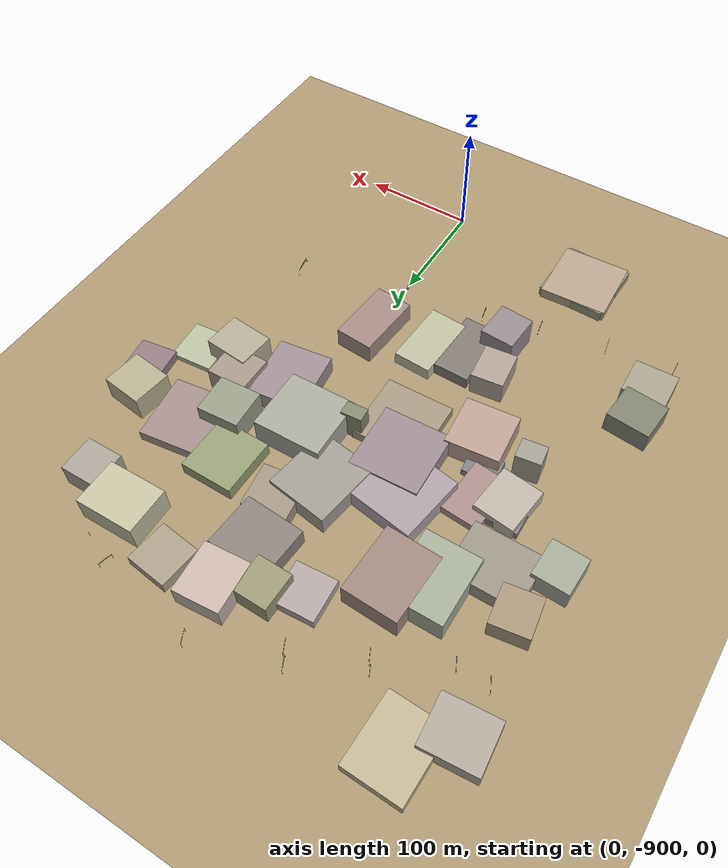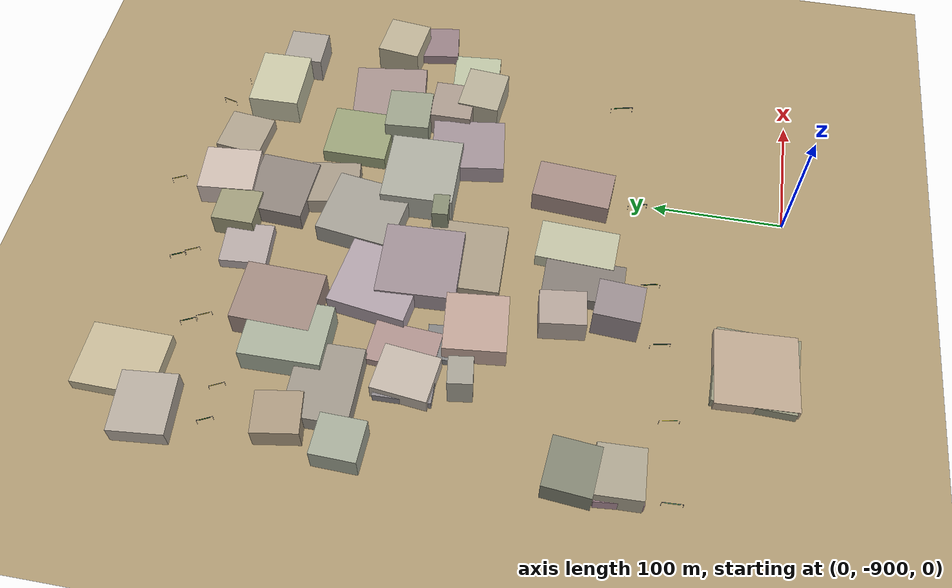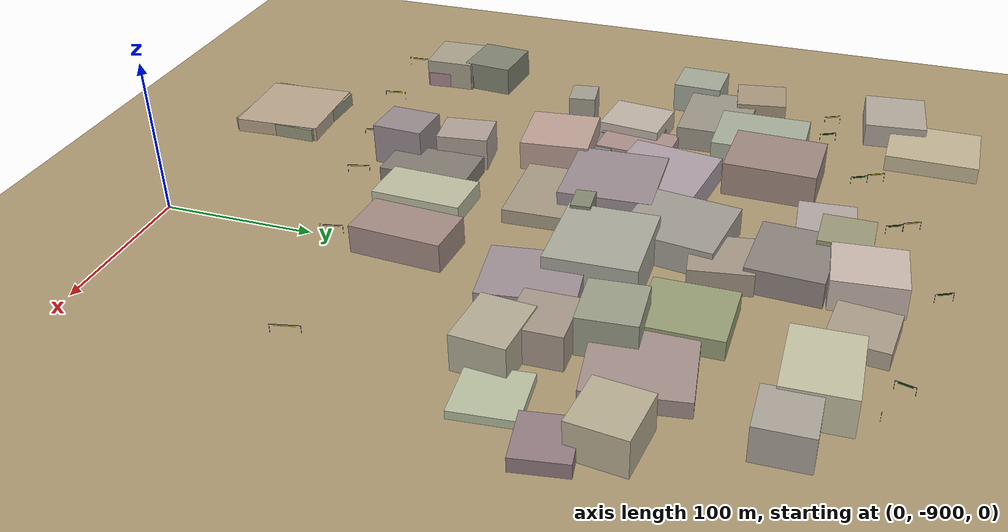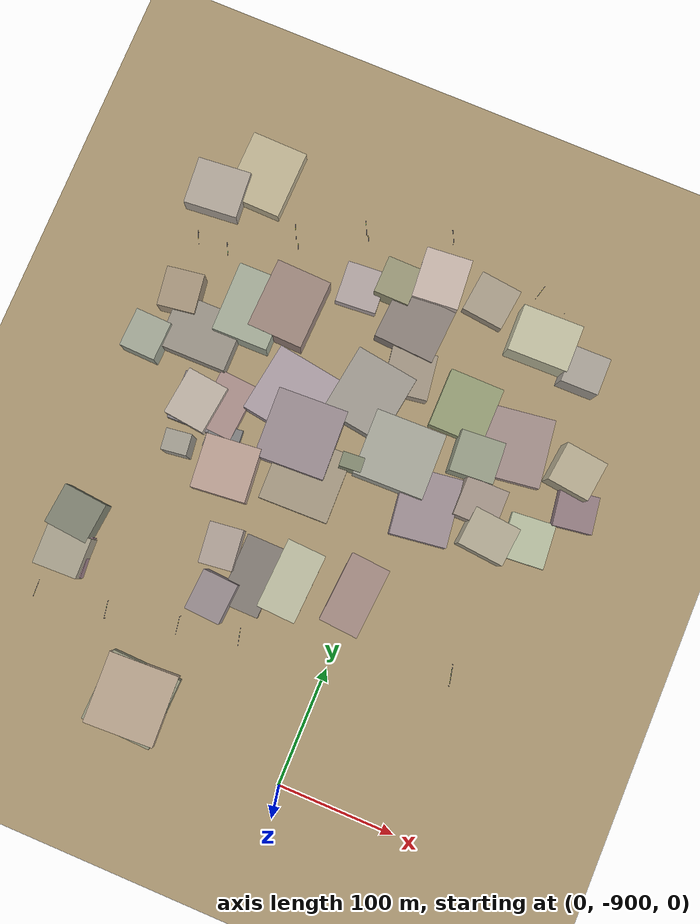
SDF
<sdf version="1.9">
 <world name="crossroad_world">
  <model name="ground_plane">
   <static>true</static>
   <pose>0 0 -0.05 0 0 0</pose>
   <link name="link">
    <collision name="collision">
     <geometry><plane><normal>0 0 1</normal><size>10000 10000</size></plane></geometry>
    </collision>
    <visual name="visual">
     <geometry><plane><normal>0 0 1</normal><size>15000 15000</size></plane></geometry>
     <material><ambient>0.68 0.60 0.45 1</ambient><diffuse>0.68 0.60 0.45 1</diffuse></material>
    </visual>
   </link>
  </model>
  <model name="tl_2">
   <static>true</static>
   <pose>70.780 -450.275 0 0 0 2.885</pose>
   <link name="link">
    <visual name="pole">
     <pose>0 0 2.750 0 0 0</pose>
     <geometry><cylinder><radius>0.06</radius><length>5.50</length></cylinder></geometry>
     <material><ambient>0.25 0.25 0.25 1</ambient><diffuse>0.25 0.25 0.25 1</diffuse></material>
    </visual>
    <visual name="housing">
     <pose>0 0 5.950 0 0 0</pose>
     <geometry><box><size>0.33 0.33 0.9</size></box></geometry>
     <material><ambient>0.08 0.08 0.08 1</ambient><diffuse>0.08 0.08 0.08 1</diffuse></material>
    </visual>
    <visual name="red">
     <pose>0 0 6.250 0 0 0</pose>
     <geometry><sphere><radius>0.09</radius></sphere></geometry>
     <material>
      <ambient>0.90 0.05 0.05 1</ambient>
      <diffuse>0.90 0.05 0.05 1</diffuse>
      <emissive>0.6 0 0 1</emissive>
     </material>
    </visual>
    <visual name="amber">
     <pose>0 0 5.950 0 0 0</pose>
     <geometry><sphere><radius>0.09</radius></sphere></geometry>
     <material><ambient>0.90 0.55 0.00 1</ambient><diffuse>0.90 0.55 0.00 1</diffuse></material>
    </visual>
    <visual name="green">
     <pose>0 0 5.650 0 0 0</pose>
     <geometry><sphere><radius>0.09</radius></sphere></geometry>
     <material><ambient>0.00 0.78 0.00 1</ambient><diffuse>0.00 0.78 0.00 1</diffuse></material>
    </visual>
    <collision name="col">
     <pose>0 0 2.750 0 0 0</pose>
     <geometry><cylinder><radius>0.06</radius><length>5.50</length></cylinder></geometry>
    </collision>
   </link>
  </model>
  <model name="gantry_1">
   <static>true</static>
   <pose>45.629 -440.178 0 0 0 1.314</pose>
   <link name="link">
    <visual name="post_l">
     <pose>-5.700 0 2.925 0 0 0</pose>
     <geometry><cylinder><radius>0.1</radius><length>5.85</length></cylinder></geometry>
     <material><ambient>0.30 0.30 0.35 1</ambient><diffuse>0.30 0.30 0.35 1</diffuse></material>
    </visual>
    <visual name="post_r">
     <pose>5.700 0 2.925 0 0 0</pose>
     <geometry><cylinder><radius>0.1</radius><length>5.85</length></cylinder></geometry>
     <material><ambient>0.30 0.30 0.35 1</ambient><diffuse>0.30 0.30 0.35 1</diffuse></material>
    </visual>
    <visual name="beam">
     <pose>0 0 6.000 0 0 0</pose>
     <geometry><box><size>11.400 0.22 0.22</size></box></geometry>
     <material><ambient>0.30 0.30 0.35 1</ambient><diffuse>0.30 0.30 0.35 1</diffuse></material>
    </visual>
    <visual name="sign_border">
     <pose>0 -0.14 5.450 0 0 0</pose>
     <geometry><box><size>8.288 0.04 0.92</size></box></geometry>
     <material><ambient>0.90 0.85 0.10 1</ambient><diffuse>0.90 0.85 0.10 1</diffuse></material>
    </visual>
    <visual name="sign_panel">
     <pose>0 -0.15 5.450 0 0 0</pose>
     <geometry><box><size>8.208 0.05 0.86</size></box></geometry>
     <material><ambient>0.05 0.38 0.10 1</ambient><diffuse>0.05 0.38 0.10 1</diffuse></material>
    </visual>
    <collision name="col_post_l">
     <pose>-5.700 0 2.925 0 0 0</pose>
     <geometry><cylinder><radius>0.1</radius><length>5.85</length></cylinder></geometry>
    </collision>
    <collision name="col_post_r">
     <pose>5.700 0 2.925 0 0 0</pose>
     <geometry><cylinder><radius>0.1</radius><length>5.85</length></cylinder></geometry>
    </collision>
    <collision name="col_beam">
     <pose>0 0 6.000 0 0 0</pose>
     <geometry><box><size>11.400 0.22 0.22</size></box></geometry>
    </collision>
   </link>
  </model>
  <model name="gantry_47">
   <static>true</static>
   <pose>-111.786 -445.579 0 0 0 -1.121</pose>
   <link name="link">
    <visual name="post_l">
     <pose>-5.700 0 2.925 0 0 0</pose>
     <geometry><cylinder><radius>0.1</radius><length>5.85</length></cylinder></geometry>
     <material><ambient>0.30 0.30 0.35 1</ambient><diffuse>0.30 0.30 0.35 1</diffuse></material>
    </visual>
    <visual name="post_r">
     <pose>5.700 0 2.925 0 0 0</pose>
     <geometry><cylinder><radius>0.1</radius><length>5.85</length></cylinder></geometry>
     <material><ambient>0.30 0.30 0.35 1</ambient><diffuse>0.30 0.30 0.35 1</diffuse></material>
    </visual>
    <visual name="beam">
     <pose>0 0 6.000 0 0 0</pose>
     <geometry><box><size>11.400 0.22 0.22</size></box></geometry>
     <material><ambient>0.30 0.30 0.35 1</ambient><diffuse>0.30 0.30 0.35 1</diffuse></material>
    </visual>
    <visual name="sign_border">
     <pose>0 -0.14 5.450 0 0 0</pose>
     <geometry><box><size>8.288 0.04 0.92</size></box></geometry>
     <material><ambient>0.90 0.85 0.10 1</ambient><diffuse>0.90 0.85 0.10 1</diffuse></material>
    </visual>
    <visual name="sign_panel">
     <pose>0 -0.15 5.450 0 0 0</pose>
     <geometry><box><size>8.208 0.05 0.86</size></box></geometry>
     <material><ambient>0.05 0.38 0.10 1</ambient><diffuse>0.05 0.38 0.10 1</diffuse></material>
    </visual>
    <collision name="col_post_l">
     <pose>-5.700 0 2.925 0 0 0</pose>
     <geometry><cylinder><radius>0.1</radius><length>5.85</length></cylinder></geometry>
    </collision>
    <collision name="col_post_r">
     <pose>5.700 0 2.925 0 0 0</pose>
     <geometry><cylinder><radius>0.1</radius><length>5.85</length></cylinder></geometry>
    </collision>
    <collision name="col_beam">
     <pose>0 0 6.000 0 0 0</pose>
     <geometry><box><size>11.400 0.22 0.22</size></box></geometry>
    </collision>
   </link>
  </model>
  <model name="gantry_48">
   <static>true</static>
   <pose>-165.815 -471.672 0 0 0 -1.121</pose>
   <link name="link">
    <visual name="post_l">
     <pose>-5.700 0 2.925 0 0 0</pose>
     <geometry><cylinder><radius>0.1</radius><length>5.85</length></cylinder></geometry>
     <material><ambient>0.30 0.30 0.35 1</ambient><diffuse>0.30 0.30 0.35 1</diffuse></material>
    </visual>
    <visual name="post_r">
     <pose>5.700 0 2.925 0 0 0</pose>
     <geometry><cylinder><radius>0.1</radius><length>5.85</length></cylinder></geometry>
     <material><ambient>0.30 0.30 0.35 1</ambient><diffuse>0.30 0.30 0.35 1</diffuse></material>
    </visual>
    <visual name="beam">
     <pose>0 0 6.000 0 0 0</pose>
     <geometry><box><size>11.400 0.22 0.22</size></box></geometry>
     <material><ambient>0.30 0.30 0.35 1</ambient><diffuse>0.30 0.30 0.35 1</diffuse></material>
    </visual>
    <visual name="sign_border">
     <pose>0 -0.14 5.450 0 0 0</pose>
     <geometry><box><size>8.288 0.04 0.92</size></box></geometry>
     <material><ambient>0.90 0.85 0.10 1</ambient><diffuse>0.90 0.85 0.10 1</diffuse></material>
    </visual>
    <visual name="sign_panel">
     <pose>0 -0.15 5.450 0 0 0</pose>
     <geometry><box><size>8.208 0.05 0.86</size></box></geometry>
     <material><ambient>0.05 0.38 0.10 1</ambient><diffuse>0.05 0.38 0.10 1</diffuse></material>
    </visual>
    <collision name="col_post_l">
     <pose>-5.700 0 2.925 0 0 0</pose>
     <geometry><cylinder><radius>0.1</radius><length>5.85</length></cylinder></geometry>
    </collision>
    <collision name="col_post_r">
     <pose>5.700 0 2.925 0 0 0</pose>
     <geometry><cylinder><radius>0.1</radius><length>5.85</length></cylinder></geometry>
    </collision>
    <collision name="col_beam">
     <pose>0 0 6.000 0 0 0</pose>
     <geometry><box><size>11.400 0.22 0.22</size></box></geometry>
    </collision>
   </link>
  </model>
  <model name="gantry_52">
   <static>true</static>
   <pose>-240.143 -508.150 0 0 0 -1.119</pose>
   <link name="link">
    <visual name="post_l">
     <pose>-5.700 0 2.925 0 0 0</pose>
     <geometry><cylinder><radius>0.1</radius><length>5.85</length></cylinder></geometry>
     <material><ambient>0.30 0.30 0.35 1</ambient><diffuse>0.30 0.30 0.35 1</diffuse></material>
    </visual>
    <visual name="post_r">
     <pose>5.700 0 2.925 0 0 0</pose>
     <geometry><cylinder><radius>0.1</radius><length>5.85</length></cylinder></geometry>
     <material><ambient>0.30 0.30 0.35 1</ambient><diffuse>0.30 0.30 0.35 1</diffuse></material>
    </visual>
    <visual name="beam">
     <pose>0 0 6.000 0 0 0</pose>
     <geometry><box><size>11.400 0.22 0.22</size></box></geometry>
     <material><ambient>0.30 0.30 0.35 1</ambient><diffuse>0.30 0.30 0.35 1</diffuse></material>
    </visual>
    <visual name="sign_border">
     <pose>0 -0.14 5.450 0 0 0</pose>
     <geometry><box><size>8.288 0.04 0.92</size></box></geometry>
     <material><ambient>0.90 0.85 0.10 1</ambient><diffuse>0.90 0.85 0.10 1</diffuse></material>
    </visual>
    <visual name="sign_panel">
     <pose>0 -0.15 5.450 0 0 0</pose>
     <geometry><box><size>8.208 0.05 0.86</size></box></geometry>
     <material><ambient>0.05 0.38 0.10 1</ambient><diffuse>0.05 0.38 0.10 1</diffuse></material>
    </visual>
    <collision name="col_post_l">
     <pose>-5.700 0 2.925 0 0 0</pose>
     <geometry><cylinder><radius>0.1</radius><length>5.85</length></cylinder></geometry>
    </collision>
    <collision name="col_post_r">
     <pose>5.700 0 2.925 0 0 0</pose>
     <geometry><cylinder><radius>0.1</radius><length>5.85</length></cylinder></geometry>
    </collision>
    <collision name="col_beam">
     <pose>0 0 6.000 0 0 0</pose>
     <geometry><box><size>11.400 0.22 0.22</size></box></geometry>
    </collision>
   </link>
  </model>
  <model name="gantry_61">
   <static>true</static>
   <pose>-159.361 -481.997 0 0 0 2.027</pose>
   <link name="link">
    <visual name="post_l">
     <pose>-5.700 0 2.925 0 0 0</pose>
     <geometry><cylinder><radius>0.1</radius><length>5.85</length></cylinder></geometry>
     <material><ambient>0.30 0.30 0.35 1</ambient><diffuse>0.30 0.30 0.35 1</diffuse></material>
    </visual>
    <visual name="post_r">
     <pose>5.700 0 2.925 0 0 0</pose>
     <geometry><cylinder><radius>0.1</radius><length>5.85</length></cylinder></geometry>
     <material><ambient>0.30 0.30 0.35 1</ambient><diffuse>0.30 0.30 0.35 1</diffuse></material>
    </visual>
    <visual name="beam">
     <pose>0 0 6.000 0 0 0</pose>
     <geometry><box><size>11.400 0.22 0.22</size></box></geometry>
     <material><ambient>0.30 0.30 0.35 1</ambient><diffuse>0.30 0.30 0.35 1</diffuse></material>
    </visual>
    <visual name="sign_border">
     <pose>0 -0.14 5.450 0 0 0</pose>
     <geometry><box><size>8.288 0.04 0.92</size></box></geometry>
     <material><ambient>0.90 0.85 0.10 1</ambient><diffuse>0.90 0.85 0.10 1</diffuse></material>
    </visual>
    <visual name="sign_panel">
     <pose>0 -0.15 5.450 0 0 0</pose>
     <geometry><box><size>8.208 0.05 0.86</size></box></geometry>
     <material><ambient>0.05 0.38 0.10 1</ambient><diffuse>0.05 0.38 0.10 1</diffuse></material>
    </visual>
    <collision name="col_post_l">
     <pose>-5.700 0 2.925 0 0 0</pose>
     <geometry><cylinder><radius>0.1</radius><length>5.85</length></cylinder></geometry>
    </collision>
    <collision name="col_post_r">
     <pose>5.700 0 2.925 0 0 0</pose>
     <geometry><cylinder><radius>0.1</radius><length>5.85</length></cylinder></geometry>
    </collision>
    <collision name="col_beam">
     <pose>0 0 6.000 0 0 0</pose>
     <geometry><box><size>11.400 0.22 0.22</size></box></geometry>
    </collision>
   </link>
  </model>
  <model name="gantry_62">
   <static>true</static>
   <pose>-105.487 -455.585 0 0 0 2.027</pose>
   <link name="link">
    <visual name="post_l">
     <pose>-5.700 0 2.925 0 0 0</pose>
     <geometry><cylinder><radius>0.1</radius><length>5.85</length></cylinder></geometry>
     <material><ambient>0.30 0.30 0.35 1</ambient><diffuse>0.30 0.30 0.35 1</diffuse></material>
    </visual>
    <visual name="post_r">
     <pose>5.700 0 2.925 0 0 0</pose>
     <geometry><cylinder><radius>0.1</radius><length>5.85</length></cylinder></geometry>
     <material><ambient>0.30 0.30 0.35 1</ambient><diffuse>0.30 0.30 0.35 1</diffuse></material>
    </visual>
    <visual name="beam">
     <pose>0 0 6.000 0 0 0</pose>
     <geometry><box><size>11.400 0.22 0.22</size></box></geometry>
     <material><ambient>0.30 0.30 0.35 1</ambient><diffuse>0.30 0.30 0.35 1</diffuse></material>
    </visual>
    <visual name="sign_border">
     <pose>0 -0.14 5.450 0 0 0</pose>
     <geometry><box><size>8.288 0.04 0.92</size></box></geometry>
     <material><ambient>0.90 0.85 0.10 1</ambient><diffuse>0.90 0.85 0.10 1</diffuse></material>
    </visual>
    <visual name="sign_panel">
     <pose>0 -0.15 5.450 0 0 0</pose>
     <geometry><box><size>8.208 0.05 0.86</size></box></geometry>
     <material><ambient>0.05 0.38 0.10 1</ambient><diffuse>0.05 0.38 0.10 1</diffuse></material>
    </visual>
    <collision name="col_post_l">
     <pose>-5.700 0 2.925 0 0 0</pose>
     <geometry><cylinder><radius>0.1</radius><length>5.85</length></cylinder></geometry>
    </collision>
    <collision name="col_post_r">
     <pose>5.700 0 2.925 0 0 0</pose>
     <geometry><cylinder><radius>0.1</radius><length>5.85</length></cylinder></geometry>
    </collision>
    <collision name="col_beam">
     <pose>0 0 6.000 0 0 0</pose>
     <geometry><box><size>11.400 0.22 0.22</size></box></geometry>
    </collision>
   </link>
  </model>
  <model name="gantry_63">
   <static>true</static>
   <pose>-213.235 -508.408 0 0 0 2.027</pose>
   <link name="link">
    <visual name="post_l">
     <pose>-5.700 0 2.925 0 0 0</pose>
     <geometry><cylinder><radius>0.1</radius><length>5.85</length></cylinder></geometry>
     <material><ambient>0.30 0.30 0.35 1</ambient><diffuse>0.30 0.30 0.35 1</diffuse></material>
    </visual>
    <visual name="post_r">
     <pose>5.700 0 2.925 0 0 0</pose>
     <geometry><cylinder><radius>0.1</radius><length>5.85</length></cylinder></geometry>
     <material><ambient>0.30 0.30 0.35 1</ambient><diffuse>0.30 0.30 0.35 1</diffuse></material>
    </visual>
    <visual name="beam">
     <pose>0 0 6.000 0 0 0</pose>
     <geometry><box><size>11.400 0.22 0.22</size></box></geometry>
     <material><ambient>0.30 0.30 0.35 1</ambient><diffuse>0.30 0.30 0.35 1</diffuse></material>
    </visual>
    <visual name="sign_border">
     <pose>0 -0.14 5.450 0 0 0</pose>
     <geometry><box><size>8.288 0.04 0.92</size></box></geometry>
     <material><ambient>0.90 0.85 0.10 1</ambient><diffuse>0.90 0.85 0.10 1</diffuse></material>
    </visual>
    <visual name="sign_panel">
     <pose>0 -0.15 5.450 0 0 0</pose>
     <geometry><box><size>8.208 0.05 0.86</size></box></geometry>
     <material><ambient>0.05 0.38 0.10 1</ambient><diffuse>0.05 0.38 0.10 1</diffuse></material>
    </visual>
    <collision name="col_post_l">
     <pose>-5.700 0 2.925 0 0 0</pose>
     <geometry><cylinder><radius>0.1</radius><length>5.85</length></cylinder></geometry>
    </collision>
    <collision name="col_post_r">
     <pose>5.700 0 2.925 0 0 0</pose>
     <geometry><cylinder><radius>0.1</radius><length>5.85</length></cylinder></geometry>
    </collision>
    <collision name="col_beam">
     <pose>0 0 6.000 0 0 0</pose>
     <geometry><box><size>11.400 0.22 0.22</size></box></geometry>
    </collision>
   </link>
  </model>
  <model name="gantry_64">
   <static>true</static>
   <pose>-40.800 -423.876 0 0 0 2.026</pose>
   <link name="link">
    <visual name="post_l">
     <pose>-5.700 0 2.925 0 0 0</pose>
     <geometry><cylinder><radius>0.1</radius><length>5.85</length></cylinder></geometry>
     <material><ambient>0.30 0.30 0.35 1</ambient><diffuse>0.30 0.30 0.35 1</diffuse></material>
    </visual>
    <visual name="post_r">
     <pose>5.700 0 2.925 0 0 0</pose>
     <geometry><cylinder><radius>0.1</radius><length>5.85</length></cylinder></geometry>
     <material><ambient>0.30 0.30 0.35 1</ambient><diffuse>0.30 0.30 0.35 1</diffuse></material>
    </visual>
    <visual name="beam">
     <pose>0 0 6.000 0 0 0</pose>
     <geometry><box><size>11.400 0.22 0.22</size></box></geometry>
     <material><ambient>0.30 0.30 0.35 1</ambient><diffuse>0.30 0.30 0.35 1</diffuse></material>
    </visual>
    <visual name="sign_border">
     <pose>0 -0.14 5.450 0 0 0</pose>
     <geometry><box><size>8.288 0.04 0.92</size></box></geometry>
     <material><ambient>0.90 0.85 0.10 1</ambient><diffuse>0.90 0.85 0.10 1</diffuse></material>
    </visual>
    <visual name="sign_panel">
     <pose>0 -0.15 5.450 0 0 0</pose>
     <geometry><box><size>8.208 0.05 0.86</size></box></geometry>
     <material><ambient>0.05 0.38 0.10 1</ambient><diffuse>0.05 0.38 0.10 1</diffuse></material>
    </visual>
    <collision name="col_post_l">
     <pose>-5.700 0 2.925 0 0 0</pose>
     <geometry><cylinder><radius>0.1</radius><length>5.85</length></cylinder></geometry>
    </collision>
    <collision name="col_post_r">
     <pose>5.700 0 2.925 0 0 0</pose>
     <geometry><cylinder><radius>0.1</radius><length>5.85</length></cylinder></geometry>
    </collision>
    <collision name="col_beam">
     <pose>0 0 6.000 0 0 0</pose>
     <geometry><box><size>11.400 0.22 0.22</size></box></geometry>
    </collision>
   </link>
  </model>
  <model name="gantry_103">
   <static>true</static>
   <pose>-3.310 -786.940 0 0 0 -1.371</pose>
   <link name="link">
    <visual name="post_l">
     <pose>-7.300 0 2.925 0 0 0</pose>
     <geometry><cylinder><radius>0.1</radius><length>5.85</length></cylinder></geometry>
     <material><ambient>0.30 0.30 0.35 1</ambient><diffuse>0.30 0.30 0.35 1</diffuse></material>
    </visual>
    <visual name="post_r">
     <pose>7.300 0 2.925 0 0 0</pose>
     <geometry><cylinder><radius>0.1</radius><length>5.85</length></cylinder></geometry>
     <material><ambient>0.30 0.30 0.35 1</ambient><diffuse>0.30 0.30 0.35 1</diffuse></material>
    </visual>
    <visual name="beam">
     <pose>0 0 6.000 0 0 0</pose>
     <geometry><box><size>14.600 0.22 0.22</size></box></geometry>
     <material><ambient>0.30 0.30 0.35 1</ambient><diffuse>0.30 0.30 0.35 1</diffuse></material>
    </visual>
    <visual name="sign_border">
     <pose>0 -0.14 5.450 0 0 0</pose>
     <geometry><box><size>10.592 0.04 0.92</size></box></geometry>
     <material><ambient>0.90 0.85 0.10 1</ambient><diffuse>0.90 0.85 0.10 1</diffuse></material>
    </visual>
    <visual name="sign_panel">
     <pose>0 -0.15 5.450 0 0 0</pose>
     <geometry><box><size>10.512 0.05 0.86</size></box></geometry>
     <material><ambient>0.05 0.38 0.10 1</ambient><diffuse>0.05 0.38 0.10 1</diffuse></material>
    </visual>
    <collision name="col_post_l">
     <pose>-7.300 0 2.925 0 0 0</pose>
     <geometry><cylinder><radius>0.1</radius><length>5.85</length></cylinder></geometry>
    </collision>
    <collision name="col_post_r">
     <pose>7.300 0 2.925 0 0 0</pose>
     <geometry><cylinder><radius>0.1</radius><length>5.85</length></cylinder></geometry>
    </collision>
    <collision name="col_beam">
     <pose>0 0 6.000 0 0 0</pose>
     <geometry><box><size>14.600 0.22 0.22</size></box></geometry>
    </collision>
   </link>
  </model>
  <model name="gantry_104">
   <static>true</static>
   <pose>94.974 -765.272 0 0 0 -1.362</pose>
   <link name="link">
    <visual name="post_l">
     <pose>-8.900 0 2.925 0 0 0</pose>
     <geometry><cylinder><radius>0.1</radius><length>5.85</length></cylinder></geometry>
     <material><ambient>0.30 0.30 0.35 1</ambient><diffuse>0.30 0.30 0.35 1</diffuse></material>
    </visual>
    <visual name="post_r">
     <pose>8.900 0 2.925 0 0 0</pose>
     <geometry><cylinder><radius>0.1</radius><length>5.85</length></cylinder></geometry>
     <material><ambient>0.30 0.30 0.35 1</ambient><diffuse>0.30 0.30 0.35 1</diffuse></material>
    </visual>
    <visual name="beam">
     <pose>0 0 6.000 0 0 0</pose>
     <geometry><box><size>17.800 0.22 0.22</size></box></geometry>
     <material><ambient>0.30 0.30 0.35 1</ambient><diffuse>0.30 0.30 0.35 1</diffuse></material>
    </visual>
    <visual name="sign_border">
     <pose>0 -0.14 5.450 0 0 0</pose>
     <geometry><box><size>12.896 0.04 0.92</size></box></geometry>
     <material><ambient>0.90 0.85 0.10 1</ambient><diffuse>0.90 0.85 0.10 1</diffuse></material>
    </visual>
    <visual name="sign_panel">
     <pose>0 -0.15 5.450 0 0 0</pose>
     <geometry><box><size>12.816 0.05 0.86</size></box></geometry>
     <material><ambient>0.05 0.38 0.10 1</ambient><diffuse>0.05 0.38 0.10 1</diffuse></material>
    </visual>
    <collision name="col_post_l">
     <pose>-8.900 0 2.925 0 0 0</pose>
     <geometry><cylinder><radius>0.1</radius><length>5.85</length></cylinder></geometry>
    </collision>
    <collision name="col_post_r">
     <pose>8.900 0 2.925 0 0 0</pose>
     <geometry><cylinder><radius>0.1</radius><length>5.85</length></cylinder></geometry>
    </collision>
    <collision name="col_beam">
     <pose>0 0 6.000 0 0 0</pose>
     <geometry><box><size>17.800 0.22 0.22</size></box></geometry>
    </collision>
   </link>
  </model>
  <model name="gantry_105">
   <static>true</static>
   <pose>-244.082 -831.112 0 0 0 -1.521</pose>
   <link name="link">
    <visual name="post_l">
     <pose>-7.300 0 2.925 0 0 0</pose>
     <geometry><cylinder><radius>0.1</radius><length>5.85</length></cylinder></geometry>
     <material><ambient>0.30 0.30 0.35 1</ambient><diffuse>0.30 0.30 0.35 1</diffuse></material>
    </visual>
    <visual name="post_r">
     <pose>7.300 0 2.925 0 0 0</pose>
     <geometry><cylinder><radius>0.1</radius><length>5.85</length></cylinder></geometry>
     <material><ambient>0.30 0.30 0.35 1</ambient><diffuse>0.30 0.30 0.35 1</diffuse></material>
    </visual>
    <visual name="beam">
     <pose>0 0 6.000 0 0 0</pose>
     <geometry><box><size>14.600 0.22 0.22</size></box></geometry>
     <material><ambient>0.30 0.30 0.35 1</ambient><diffuse>0.30 0.30 0.35 1</diffuse></material>
    </visual>
    <visual name="sign_border">
     <pose>0 -0.14 5.450 0 0 0</pose>
     <geometry><box><size>10.592 0.04 0.92</size></box></geometry>
     <material><ambient>0.90 0.85 0.10 1</ambient><diffuse>0.90 0.85 0.10 1</diffuse></material>
    </visual>
    <visual name="sign_panel">
     <pose>0 -0.15 5.450 0 0 0</pose>
     <geometry><box><size>10.512 0.05 0.86</size></box></geometry>
     <material><ambient>0.05 0.38 0.10 1</ambient><diffuse>0.05 0.38 0.10 1</diffuse></material>
    </visual>
    <collision name="col_post_l">
     <pose>-7.300 0 2.925 0 0 0</pose>
     <geometry><cylinder><radius>0.1</radius><length>5.85</length></cylinder></geometry>
    </collision>
    <collision name="col_post_r">
     <pose>7.300 0 2.925 0 0 0</pose>
     <geometry><cylinder><radius>0.1</radius><length>5.85</length></cylinder></geometry>
    </collision>
    <collision name="col_beam">
     <pose>0 0 6.000 0 0 0</pose>
     <geometry><box><size>14.600 0.22 0.22</size></box></geometry>
    </collision>
   </link>
  </model>
  <model name="gantry_108">
   <static>true</static>
   <pose>-184.480 -824.884 0 0 0 -1.387</pose>
   <link name="link">
    <visual name="post_l">
     <pose>-7.300 0 2.925 0 0 0</pose>
     <geometry><cylinder><radius>0.1</radius><length>5.85</length></cylinder></geometry>
     <material><ambient>0.30 0.30 0.35 1</ambient><diffuse>0.30 0.30 0.35 1</diffuse></material>
    </visual>
    <visual name="post_r">
     <pose>7.300 0 2.925 0 0 0</pose>
     <geometry><cylinder><radius>0.1</radius><length>5.85</length></cylinder></geometry>
     <material><ambient>0.30 0.30 0.35 1</ambient><diffuse>0.30 0.30 0.35 1</diffuse></material>
    </visual>
    <visual name="beam">
     <pose>0 0 6.000 0 0 0</pose>
     <geometry><box><size>14.600 0.22 0.22</size></box></geometry>
     <material><ambient>0.30 0.30 0.35 1</ambient><diffuse>0.30 0.30 0.35 1</diffuse></material>
    </visual>
    <visual name="sign_border">
     <pose>0 -0.14 5.450 0 0 0</pose>
     <geometry><box><size>10.592 0.04 0.92</size></box></geometry>
     <material><ambient>0.90 0.85 0.10 1</ambient><diffuse>0.90 0.85 0.10 1</diffuse></material>
    </visual>
    <visual name="sign_panel">
     <pose>0 -0.15 5.450 0 0 0</pose>
     <geometry><box><size>10.512 0.05 0.86</size></box></geometry>
     <material><ambient>0.05 0.38 0.10 1</ambient><diffuse>0.05 0.38 0.10 1</diffuse></material>
    </visual>
    <collision name="col_post_l">
     <pose>-7.300 0 2.925 0 0 0</pose>
     <geometry><cylinder><radius>0.1</radius><length>5.85</length></cylinder></geometry>
    </collision>
    <collision name="col_post_r">
     <pose>7.300 0 2.925 0 0 0</pose>
     <geometry><cylinder><radius>0.1</radius><length>5.85</length></cylinder></geometry>
    </collision>
    <collision name="col_beam">
     <pose>0 0 6.000 0 0 0</pose>
     <geometry><box><size>14.600 0.22 0.22</size></box></geometry>
    </collision>
   </link>
  </model>
  <model name="gantry_109">
   <static>true</static>
   <pose>-125.471 -814.025 0 0 0 -1.389</pose>
   <link name="link">
    <visual name="post_l">
     <pose>-7.300 0 2.925 0 0 0</pose>
     <geometry><cylinder><radius>0.1</radius><length>5.85</length></cylinder></geometry>
     <material><ambient>0.30 0.30 0.35 1</ambient><diffuse>0.30 0.30 0.35 1</diffuse></material>
    </visual>
    <visual name="post_r">
     <pose>7.300 0 2.925 0 0 0</pose>
     <geometry><cylinder><radius>0.1</radius><length>5.85</length></cylinder></geometry>
     <material><ambient>0.30 0.30 0.35 1</ambient><diffuse>0.30 0.30 0.35 1</diffuse></material>
    </visual>
    <visual name="beam">
     <pose>0 0 6.000 0 0 0</pose>
     <geometry><box><size>14.600 0.22 0.22</size></box></geometry>
     <material><ambient>0.30 0.30 0.35 1</ambient><diffuse>0.30 0.30 0.35 1</diffuse></material>
    </visual>
    <visual name="sign_border">
     <pose>0 -0.14 5.450 0 0 0</pose>
     <geometry><box><size>10.592 0.04 0.92</size></box></geometry>
     <material><ambient>0.90 0.85 0.10 1</ambient><diffuse>0.90 0.85 0.10 1</diffuse></material>
    </visual>
    <visual name="sign_panel">
     <pose>0 -0.15 5.450 0 0 0</pose>
     <geometry><box><size>10.512 0.05 0.86</size></box></geometry>
     <material><ambient>0.05 0.38 0.10 1</ambient><diffuse>0.05 0.38 0.10 1</diffuse></material>
    </visual>
    <collision name="col_post_l">
     <pose>-7.300 0 2.925 0 0 0</pose>
     <geometry><cylinder><radius>0.1</radius><length>5.85</length></cylinder></geometry>
    </collision>
    <collision name="col_post_r">
     <pose>7.300 0 2.925 0 0 0</pose>
     <geometry><cylinder><radius>0.1</radius><length>5.85</length></cylinder></geometry>
    </collision>
    <collision name="col_beam">
     <pose>0 0 6.000 0 0 0</pose>
     <geometry><box><size>14.600 0.22 0.22</size></box></geometry>
    </collision>
   </link>
  </model>
  <model name="gantry_141">
   <static>true</static>
   <pose>-75.600 -802.985 0 0 0 -1.321</pose>
   <link name="link">
    <visual name="post_l">
     <pose>-7.300 0 2.925 0 0 0</pose>
     <geometry><cylinder><radius>0.1</radius><length>5.85</length></cylinder></geometry>
     <material><ambient>0.30 0.30 0.35 1</ambient><diffuse>0.30 0.30 0.35 1</diffuse></material>
    </visual>
    <visual name="post_r">
     <pose>7.300 0 2.925 0 0 0</pose>
     <geometry><cylinder><radius>0.1</radius><length>5.85</length></cylinder></geometry>
     <material><ambient>0.30 0.30 0.35 1</ambient><diffuse>0.30 0.30 0.35 1</diffuse></material>
    </visual>
    <visual name="beam">
     <pose>0 0 6.000 0 0 0</pose>
     <geometry><box><size>14.600 0.22 0.22</size></box></geometry>
     <material><ambient>0.30 0.30 0.35 1</ambient><diffuse>0.30 0.30 0.35 1</diffuse></material>
    </visual>
    <visual name="sign_border">
     <pose>0 -0.14 5.450 0 0 0</pose>
     <geometry><box><size>10.592 0.04 0.92</size></box></geometry>
     <material><ambient>0.90 0.85 0.10 1</ambient><diffuse>0.90 0.85 0.10 1</diffuse></material>
    </visual>
    <visual name="sign_panel">
     <pose>0 -0.15 5.450 0 0 0</pose>
     <geometry><box><size>10.512 0.05 0.86</size></box></geometry>
     <material><ambient>0.05 0.38 0.10 1</ambient><diffuse>0.05 0.38 0.10 1</diffuse></material>
    </visual>
    <collision name="col_post_l">
     <pose>-7.300 0 2.925 0 0 0</pose>
     <geometry><cylinder><radius>0.1</radius><length>5.85</length></cylinder></geometry>
    </collision>
    <collision name="col_post_r">
     <pose>7.300 0 2.925 0 0 0</pose>
     <geometry><cylinder><radius>0.1</radius><length>5.85</length></cylinder></geometry>
    </collision>
    <collision name="col_beam">
     <pose>0 0 6.000 0 0 0</pose>
     <geometry><box><size>14.600 0.22 0.22</size></box></geometry>
    </collision>
   </link>
  </model>
  <model name="building_201">
   <static>true</static>
   <pose>101.884 -493.287 11.136 0 0 0.012</pose>
   <link name="link">
    <visual name="body">
     <geometry><box><size>32.32 31.84 22.27</size></box></geometry>
     <material><ambient>0.68 0.65 0.61 1</ambient><diffuse>0.68 0.65 0.61 1</diffuse></material>
    </visual>
    <collision name="col"><geometry><box><size>32.32 31.84 22.27</size></box></geometry></collision>
   </link>
  </model>
  <model name="building_204">
   <static>true</static>
   <pose>139.528 -602.338 4.535 0 0 0.146</pose>
   <link name="link">
    <visual name="body">
     <geometry><box><size>33.29 31.54 9.07</size></box></geometry>
     <material><ambient>0.59 0.50 0.52 1</ambient><diffuse>0.59 0.50 0.52 1</diffuse></material>
    </visual>
    <collision name="col"><geometry><box><size>33.29 31.54 9.07</size></box></geometry></collision>
   </link>
  </model>
  <model name="building_205">
   <static>true</static>
   <pose>112.433 -639.487 2.640 0 0 0.084</pose>
   <link name="link">
    <visual name="body">
     <geometry><box><size>37.53 38.29 5.28</size></box></geometry>
     <material><ambient>0.73 0.76 0.64 1</ambient><diffuse>0.73 0.76 0.64 1</diffuse></material>
    </visual>
    <collision name="col"><geometry><box><size>37.53 38.29 5.28</size></box></geometry></collision>
   </link>
  </model>
  <model name="building_206">
   <static>true</static>
   <pose>23.897 -557.627 6.231 0 0 -0.004</pose>
   <link name="link">
    <visual name="body">
     <geometry><box><size>46.63 50.64 12.46</size></box></geometry>
     <material><ambient>0.60 0.63 0.47 1</ambient><diffuse>0.60 0.63 0.47 1</diffuse></material>
    </visual>
    <collision name="col"><geometry><box><size>46.63 50.64 12.46</size></box></geometry></collision>
   </link>
  </model>
  <model name="building_207">
   <static>true</static>
   <pose>79.060 -650.298 11.843 0 0 -0.092</pose>
   <link name="link">
    <visual name="body">
     <geometry><box><size>39.87 33.14 23.69</size></box></geometry>
     <material><ambient>0.71 0.68 0.59 1</ambient><diffuse>0.71 0.68 0.59 1</diffuse></material>
    </visual>
    <collision name="col"><geometry><box><size>39.87 33.14 23.69</size></box></geometry></collision>
   </link>
  </model>
  <model name="building_208">
   <static>true</static>
   <pose>46.355 -594.342 12.366 0 0 0.068</pose>
   <link name="link">
    <visual name="body">
     <geometry><box><size>37.23 35.25 24.73</size></box></geometry>
     <material><ambient>0.61 0.63 0.54 1</ambient><diffuse>0.61 0.63 0.54 1</diffuse></material>
    </visual>
    <collision name="col"><geometry><box><size>37.23 35.25 24.73</size></box></geometry></collision>
   </link>
  </model>
  <model name="building_209">
   <static>true</static>
   <pose>63.285 -627.808 11.294 0 0 0.007</pose>
   <link name="link">
    <visual name="body">
     <geometry><box><size>35.92 33.42 22.59</size></box></geometry>
     <material><ambient>0.66 0.60 0.55 1</ambient><diffuse>0.66 0.60 0.55 1</diffuse></material>
    </visual>
    <collision name="col"><geometry><box><size>35.92 33.42 22.59</size></box></geometry></collision>
   </link>
  </model>
  <model name="building_210">
   <static>true</static>
   <pose>24.017 -647.211 8.649 0 0 0.134</pose>
   <link name="link">
    <visual name="body">
     <geometry><box><size>47.81 57.51 17.30</size></box></geometry>
     <material><ambient>0.63 0.57 0.59 1</ambient><diffuse>0.63 0.57 0.59 1</diffuse></material>
    </visual>
    <collision name="col"><geometry><box><size>47.81 57.51 17.30</size></box></geometry></collision>
   </link>
  </model>
  <model name="building_211">
   <static>true</static>
   <pose>-138.716 -681.262 9.889 0 0 0.100</pose>
   <link name="link">
    <visual name="body">
     <geometry><box><size>46.60 46.11 19.78</size></box></geometry>
     <material><ambient>0.75 0.64 0.59 1</ambient><diffuse>0.75 0.64 0.59 1</diffuse></material>
    </visual>
    <collision name="col"><geometry><box><size>46.60 46.11 19.78</size></box></geometry></collision>
   </link>
  </model>
  <model name="building_212">
   <static>true</static>
   <pose>-152.475 -658.640 3.417 0 0 0.088</pose>
   <link name="link">
    <visual name="body">
     <geometry><box><size>28.57 21.65 6.83</size></box></geometry>
     <material><ambient>0.51 0.51 0.51 1</ambient><diffuse>0.51 0.51 0.51 1</diffuse></material>
    </visual>
    <collision name="col"><geometry><box><size>28.57 21.65 6.83</size></box></geometry></collision>
   </link>
  </model>
  <model name="building_213">
   <static>true</static>
   <pose>-35.508 -466.567 10.135 0 0 0.085</pose>
   <link name="link">
    <visual name="body">
     <geometry><box><size>39.69 43.89 20.27</size></box></geometry>
     <material><ambient>0.80 0.73 0.69 1</ambient><diffuse>0.80 0.73 0.69 1</diffuse></material>
    </visual>
    <collision name="col"><geometry><box><size>39.69 43.89 20.27</size></box></geometry></collision>
   </link>
  </model>
  <model name="building_214">
   <static>true</static>
   <pose>-68.317 -482.273 9.845 0 0 -0.009</pose>
   <link name="link">
    <visual name="body">
     <geometry><box><size>30.50 32.46 19.69</size></box></geometry>
     <material><ambient>0.62 0.61 0.48 1</ambient><diffuse>0.62 0.61 0.48 1</diffuse></material>
    </visual>
    <collision name="col"><geometry><box><size>30.50 32.46 19.69</size></box></geometry></collision>
   </link>
  </model>
  <model name="building_215">
   <static>true</static>
   <pose>-233.721 -794.099 10.017 0 0 0.033</pose>
   <link name="link">
    <visual name="body">
     <geometry><box><size>37.65 34.08 20.03</size></box></geometry>
     <material><ambient>0.67 0.64 0.56 1</ambient><diffuse>0.67 0.64 0.56 1</diffuse></material>
    </visual>
    <collision name="col"><geometry><box><size>37.65 34.08 20.03</size></box></geometry></collision>
   </link>
  </model>
  <model name="building_216">
   <static>true</static>
   <pose>-233.721 -794.099 5.275 0 0 0.092</pose>
   <link name="link">
    <visual name="body">
     <geometry><box><size>37.65 34.08 10.55</size></box></geometry>
     <material><ambient>0.68 0.55 0.59 1</ambient><diffuse>0.68 0.55 0.59 1</diffuse></material>
    </visual>
    <collision name="col"><geometry><box><size>37.65 34.08 10.55</size></box></geometry></collision>
   </link>
  </model>
  <model name="building_369">
   <static>true</static>
   <pose>-239.839 -465.554 7.960 0 0 0.088</pose>
   <link name="link">
    <visual name="body">
     <geometry><box><size>46.40 40.88 15.92</size></box></geometry>
     <material><ambient>0.71 0.67 0.62 1</ambient><diffuse>0.71 0.67 0.62 1</diffuse></material>
    </visual>
    <collision name="col"><geometry><box><size>46.40 40.88 15.92</size></box></geometry></collision>
   </link>
  </model>
  <model name="building_370">
   <static>true</static>
   <pose>-93.240 -631.281 9.189 0 0 0.044</pose>
   <link name="link">
    <visual name="body">
     <geometry><box><size>60.00 60.00 18.38</size></box></geometry>
     <material><ambient>0.62 0.56 0.58 1</ambient><diffuse>0.62 0.56 0.58 1</diffuse></material>
    </visual>
    <collision name="col"><geometry><box><size>60.00 60.00 18.38</size></box></geometry></collision>
   </link>
  </model>
  <model name="building_371">
   <static>true</static>
   <pose>-12.567 -616.752 12.633 0 0 0.024</pose>
   <link name="link">
    <visual name="body">
     <geometry><box><size>60.00 56.15 25.27</size></box></geometry>
     <material><ambient>0.67 0.67 0.62 1</ambient><diffuse>0.67 0.67 0.62 1</diffuse></material>
    </visual>
    <collision name="col"><geometry><box><size>60.00 56.15 25.27</size></box></geometry></collision>
   </link>
  </model>
  <model name="building_372">
   <static>true</static>
   <pose>-45.719 -637.913 13.673 0 0 0.078</pose>
   <link name="link">
    <visual name="body">
     <geometry><box><size>18.54 12.39 27.35</size></box></geometry>
     <material><ambient>0.53 0.55 0.45 1</ambient><diffuse>0.53 0.55 0.45 1</diffuse></material>
    </visual>
    <collision name="col"><geometry><box><size>18.54 12.39 27.35</size></box></geometry></collision>
   </link>
  </model>
  <model name="building_382">
   <static>true</static>
   <pose>71.092 -572.076 5.153 0 0 0.135</pose>
   <link name="link">
    <visual name="body">
     <geometry><box><size>59.54 58.82 10.31</size></box></geometry>
     <material><ambient>0.65 0.57 0.55 1</ambient><diffuse>0.65 0.57 0.55 1</diffuse></material>
    </visual>
    <collision name="col"><geometry><box><size>59.54 58.82 10.31</size></box></geometry></collision>
   </link>
  </model>
  <model name="building_393">
   <static>true</static>
   <pose>-136.155 -882.278 4.731 0 0 0.046</pose>
   <link name="link">
    <visual name="body">
     <geometry><box><size>60.00 60.00 9.46</size></box></geometry>
     <material><ambient>0.73 0.65 0.56 1</ambient><diffuse>0.73 0.65 0.56 1</diffuse></material>
    </visual>
    <collision name="col"><geometry><box><size>60.00 60.00 9.46</size></box></geometry></collision>
   </link>
  </model>
  <model name="building_394">
   <static>true</static>
   <pose>-136.155 -882.278 4.525 0 0 -0.029</pose>
   <link name="link">
    <visual name="body">
     <geometry><box><size>60.00 60.00 9.05</size></box></geometry>
     <material><ambient>0.60 0.60 0.50 1</ambient><diffuse>0.60 0.60 0.50 1</diffuse></material>
    </visual>
    <collision name="col"><geometry><box><size>60.00 60.00 9.05</size></box></geometry></collision>
   </link>
  </model>
  <model name="building_427">
   <static>true</static>
   <pose>-207.592 -437.332 5.436 0 0 -0.019</pose>
   <link name="link">
    <visual name="body">
     <geometry><box><size>48.96 60.00 10.87</size></box></geometry>
     <material><ambient>0.77 0.72 0.59 1</ambient><diffuse>0.77 0.72 0.59 1</diffuse></material>
    </visual>
    <collision name="col"><geometry><box><size>48.96 60.00 10.87</size></box></geometry></collision>
   </link>
  </model>
  <model name="building_458">
   <static>true</static>
   <pose>-184.448 -638.779 3.832 0 0 0.022</pose>
   <link name="link">
    <visual name="body">
     <geometry><box><size>36.36 42.19 7.66</size></box></geometry>
     <material><ambient>0.55 0.53 0.54 1</ambient><diffuse>0.55 0.53 0.54 1</diffuse></material>
    </visual>
    <collision name="col"><geometry><box><size>36.36 42.19 7.66</size></box></geometry></collision>
   </link>
  </model>
  <model name="building_459">
   <static>true</static>
   <pose>-184.448 -638.779 6.865 0 0 -0.115</pose>
   <link name="link">
    <visual name="body">
     <geometry><box><size>36.36 42.19 13.73</size></box></geometry>
     <material><ambient>0.76 0.71 0.66 1</ambient><diffuse>0.76 0.71 0.66 1</diffuse></material>
    </visual>
    <collision name="col"><geometry><box><size>36.36 42.19 13.73</size></box></geometry></collision>
   </link>
  </model>
  <model name="building_460">
   <static>true</static>
   <pose>-236.084 -762.216 10.090 0 0 -0.092</pose>
   <link name="link">
    <visual name="body">
     <geometry><box><size>37.71 34.83 20.18</size></box></geometry>
     <material><ambient>0.51 0.52 0.45 1</ambient><diffuse>0.51 0.52 0.45 1</diffuse></material>
    </visual>
    <collision name="col"><geometry><box><size>37.71 34.83 20.18</size></box></geometry></collision>
   </link>
  </model>
  <model name="building_490">
   <static>true</static>
   <pose>-107.449 -780.582 13.849 0 0 -0.061</pose>
   <link name="link">
    <visual name="body">
     <geometry><box><size>30.24 34.40 27.70</size></box></geometry>
     <material><ambient>0.60 0.55 0.56 1</ambient><diffuse>0.60 0.55 0.56 1</diffuse></material>
    </visual>
    <collision name="col"><geometry><box><size>30.24 34.40 27.70</size></box></geometry></collision>
   </link>
  </model>
  <model name="building_491">
   <static>true</static>
   <pose>-116.799 -741.082 11.078 0 0 0.120</pose>
   <link name="link">
    <visual name="body">
     <geometry><box><size>28.34 34.58 22.16</size></box></geometry>
     <material><ambient>0.70 0.64 0.60 1</ambient><diffuse>0.70 0.64 0.60 1</diffuse></material>
    </visual>
    <collision name="col"><geometry><box><size>28.34 34.58 22.16</size></box></geometry></collision>
   </link>
  </model>
  <model name="building_492">
   <static>true</static>
   <pose>-84.596 -753.364 5.847 0 0 -0.010</pose>
   <link name="link">
    <visual name="body">
     <geometry><box><size>34.22 60.00 11.69</size></box></geometry>
     <material><ambient>0.52 0.49 0.46 1</ambient><diffuse>0.52 0.49 0.46 1</diffuse></material>
    </visual>
    <collision name="col"><geometry><box><size>34.22 60.00 11.69</size></box></geometry></collision>
   </link>
  </model>
  <model name="building_493">
   <static>true</static>
   <pose>-53.947 -745.107 5.952 0 0 -0.047</pose>
   <link name="link">
    <visual name="body">
     <geometry><box><size>33.67 60.00 11.90</size></box></geometry>
     <material><ambient>0.75 0.75 0.64 1</ambient><diffuse>0.75 0.75 0.64 1</diffuse></material>
    </visual>
    <collision name="col"><geometry><box><size>33.67 60.00 11.90</size></box></geometry></collision>
   </link>
  </model>
  <model name="building_494">
   <static>true</static>
   <pose>-2.423 -735.623 9.418 0 0 -0.074</pose>
   <link name="link">
    <visual name="body">
     <geometry><box><size>33.66 60.00 18.84</size></box></geometry>
     <material><ambient>0.65 0.55 0.52 1</ambient><diffuse>0.65 0.55 0.52 1</diffuse></material>
    </visual>
    <collision name="col"><geometry><box><size>33.66 60.00 18.84</size></box></geometry></collision>
   </link>
  </model>
  <model name="building_496">
   <static>true</static>
   <pose>-160.937 -632.342 3.925 0 0 -0.074</pose>
   <link name="link">
    <visual name="body">
     <geometry><box><size>33.35 49.98 7.85</size></box></geometry>
     <material><ambient>0.68 0.57 0.55 1</ambient><diffuse>0.68 0.57 0.55 1</diffuse></material>
    </visual>
    <collision name="col"><geometry><box><size>33.35 49.98 7.85</size></box></geometry></collision>
   </link>
  </model>
  <model name="building_497">
   <static>true</static>
   <pose>-182.771 -677.634 13.788 0 0 0.132</pose>
   <link name="link">
    <visual name="body">
     <geometry><box><size>21.58 18.14 27.58</size></box></geometry>
     <material><ambient>0.65 0.63 0.58 1</ambient><diffuse>0.65 0.63 0.58 1</diffuse></material>
    </visual>
    <collision name="col"><geometry><box><size>21.58 18.14 27.58</size></box></geometry></collision>
   </link>
  </model>
  <model name="building_502">
   <static>true</static>
   <pose>-232.052 -559.159 9.538 0 0 0.149</pose>
   <link name="link">
    <visual name="body">
     <geometry><box><size>32.18 34.10 19.08</size></box></geometry>
     <material><ambient>0.67 0.60 0.50 1</ambient><diffuse>0.67 0.60 0.50 1</diffuse></material>
    </visual>
    <collision name="col"><geometry><box><size>32.18 34.10 19.08</size></box></geometry></collision>
   </link>
  </model>
  <model name="building_503">
   <static>true</static>
   <pose>-243.576 -605.058 10.280 0 0 -0.032</pose>
   <link name="link">
    <visual name="body">
     <geometry><box><size>31.17 33.58 20.56</size></box></geometry>
     <material><ambient>0.65 0.67 0.60 1</ambient><diffuse>0.65 0.67 0.60 1</diffuse></material>
    </visual>
    <collision name="col"><geometry><box><size>31.17 33.58 20.56</size></box></geometry></collision>
   </link>
  </model>
  <model name="building_504">
   <static>true</static>
   <pose>-202.575 -584.431 8.047 0 0 0.006</pose>
   <link name="link">
    <visual name="body">
     <geometry><box><size>59.55 47.37 16.09</size></box></geometry>
     <material><ambient>0.62 0.59 0.54 1</ambient><diffuse>0.62 0.59 0.54 1</diffuse></material>
    </visual>
    <collision name="col"><geometry><box><size>59.55 47.37 16.09</size></box></geometry></collision>
   </link>
  </model>
  <model name="building_505">
   <static>true</static>
   <pose>-170.538 -549.692 11.300 0 0 0.008</pose>
   <link name="link">
    <visual name="body">
     <geometry><box><size>48.14 60.00 22.60</size></box></geometry>
     <material><ambient>0.66 0.69 0.61 1</ambient><diffuse>0.66 0.69 0.61 1</diffuse></material>
    </visual>
    <collision name="col"><geometry><box><size>48.14 60.00 22.60</size></box></geometry></collision>
   </link>
  </model>
  <model name="building_506">
   <static>true</static>
   <pose>-143.867 -536.041 11.304 0 0 -0.032</pose>
   <link name="link">
    <visual name="body">
     <geometry><box><size>47.81 60.00 22.61</size></box></geometry>
     <material><ambient>0.63 0.54 0.50 1</ambient><diffuse>0.63 0.54 0.50 1</diffuse></material>
    </visual>
    <collision name="col"><geometry><box><size>47.81 60.00 22.61</size></box></geometry></collision>
   </link>
  </model>
  <model name="building_507">
   <static>true</static>
   <pose>-95.044 -496.280 4.776 0 0 0.073</pose>
   <link name="link">
    <visual name="body">
     <geometry><box><size>35.33 36.24 9.55</size></box></geometry>
     <material><ambient>0.71 0.66 0.65 1</ambient><diffuse>0.71 0.66 0.65 1</diffuse></material>
    </visual>
    <collision name="col"><geometry><box><size>35.33 36.24 9.55</size></box></geometry></collision>
   </link>
  </model>
  <model name="building_508">
   <static>true</static>
   <pose>-41.615 -510.350 8.431 0 0 -0.059</pose>
   <link name="link">
    <visual name="body">
     <geometry><box><size>52.31 46.57 16.86</size></box></geometry>
     <material><ambient>0.56 0.52 0.49 1</ambient><diffuse>0.56 0.52 0.49 1</diffuse></material>
    </visual>
    <collision name="col"><geometry><box><size>52.31 46.57 16.86</size></box></geometry></collision>
   </link>
  </model>
  <model name="building_509">
   <static>true</static>
   <pose>61.509 -481.564 11.988 0 0 0.020</pose>
   <link name="link">
    <visual name="body">
     <geometry><box><size>51.87 40.35 23.98</size></box></geometry>
     <material><ambient>0.78 0.77 0.65 1</ambient><diffuse>0.78 0.77 0.65 1</diffuse></material>
    </visual>
    <collision name="col"><geometry><box><size>51.87 40.35 23.98</size></box></geometry></collision>
   </link>
  </model>
  <model name="building_656">
   <static>true</static>
   <pose>9.918 -464.807 5.445 0 0 -0.112</pose>
   <link name="link">
    <visual name="body">
     <geometry><box><size>36.50 36.39 10.89</size></box></geometry>
     <material><ambient>0.68 0.63 0.55 1</ambient><diffuse>0.68 0.63 0.55 1</diffuse></material>
    </visual>
    <collision name="col"><geometry><box><size>36.50 36.39 10.89</size></box></geometry></collision>
   </link>
  </model>
  <model name="building_659">
   <static>true</static>
   <pose>125.765 -573.946 11.785 0 0 -0.120</pose>
   <link name="link">
    <visual name="body">
     <geometry><box><size>36.45 34.41 23.57</size></box></geometry>
     <material><ambient>0.73 0.69 0.58 1</ambient><diffuse>0.73 0.69 0.58 1</diffuse></material>
    </visual>
    <collision name="col"><geometry><box><size>36.45 34.41 23.57</size></box></geometry></collision>
   </link>
  </model>
  <model name="building_673">
   <static>true</static>
   <pose>-30.029 -549.464 7.327 0 0 0.147</pose>
   <link name="link">
    <visual name="body">
     <geometry><box><size>38.38 38.89 14.65</size></box></geometry>
     <material><ambient>0.65 0.60 0.53 1</ambient><diffuse>0.65 0.60 0.53 1</diffuse></material>
    </visual>
    <collision name="col"><geometry><box><size>38.38 38.89 14.65</size></box></geometry></collision>
   </link>
  </model>
  <model name="building_674">
   <static>true</static>
   <pose>-53.938 -579.572 9.166 0 0 -0.142</pose>
   <link name="link">
    <visual name="body">
     <geometry><box><size>54.25 60.00 18.33</size></box></geometry>
     <material><ambient>0.64 0.62 0.58 1</ambient><diffuse>0.64 0.62 0.58 1</diffuse></material>
    </visual>
    <collision name="col"><geometry><box><size>54.25 60.00 18.33</size></box></geometry></collision>
   </link>
  </model>
  <model name="building_675">
   <static>true</static>
   <pose>-111.716 -603.730 8.382 0 0 -0.148</pose>
   <link name="link">
    <visual name="body">
     <geometry><box><size>60.00 60.00 16.76</size></box></geometry>
     <material><ambient>0.69 0.63 0.66 1</ambient><diffuse>0.69 0.63 0.66 1</diffuse></material>
    </visual>
    <collision name="col"><geometry><box><size>60.00 60.00 16.76</size></box></geometry></collision>
   </link>
  </model>
  <model name="building_686">
   <static>true</static>
   <pose>-76.433 -661.754 4.803 0 0 0.025</pose>
   <link name="link">
    <visual name="body">
     <geometry><box><size>60.00 60.00 9.61</size></box></geometry>
     <material><ambient>0.66 0.61 0.52 1</ambient><diffuse>0.66 0.61 0.52 1</diffuse></material>
    </visual>
    <collision name="col"><geometry><box><size>60.00 60.00 9.61</size></box></geometry></collision>
   </link>
  </model>
 </world>
</sdf>
